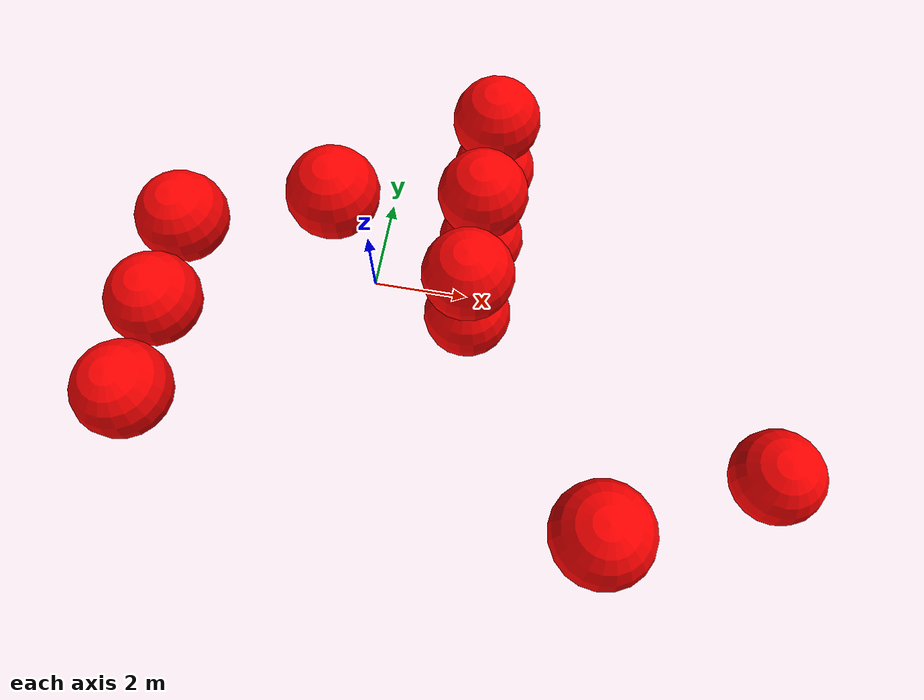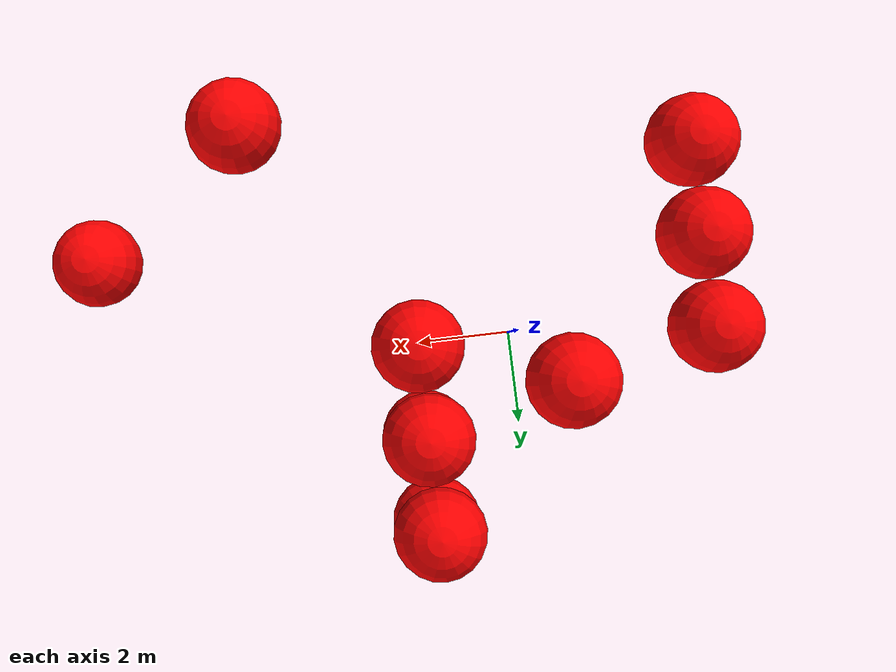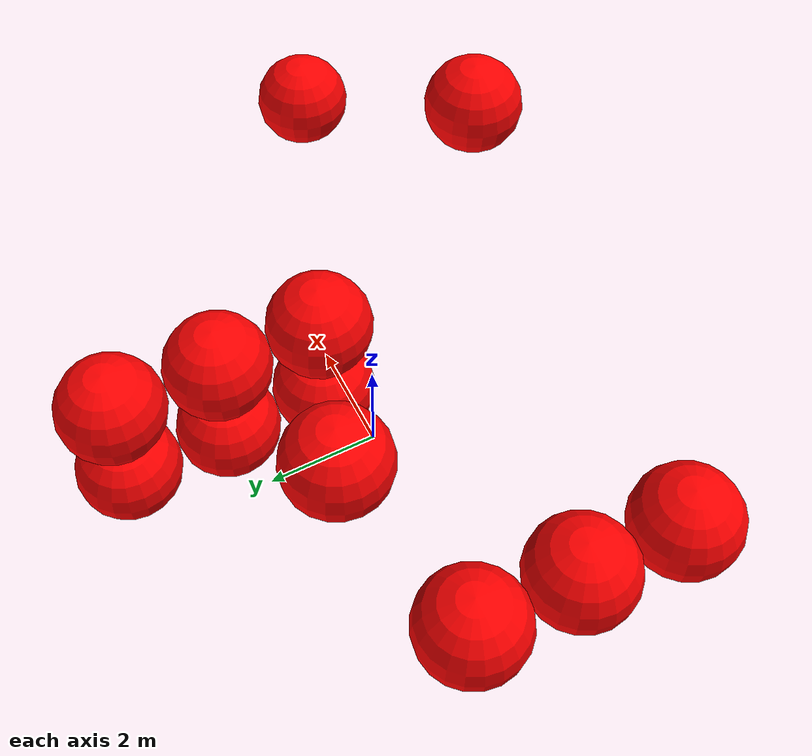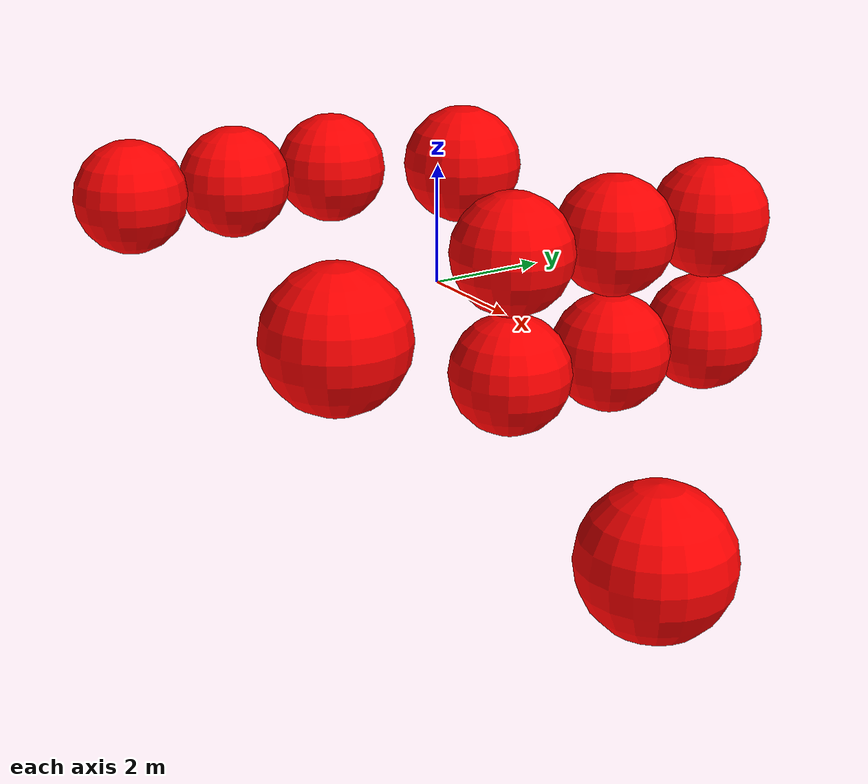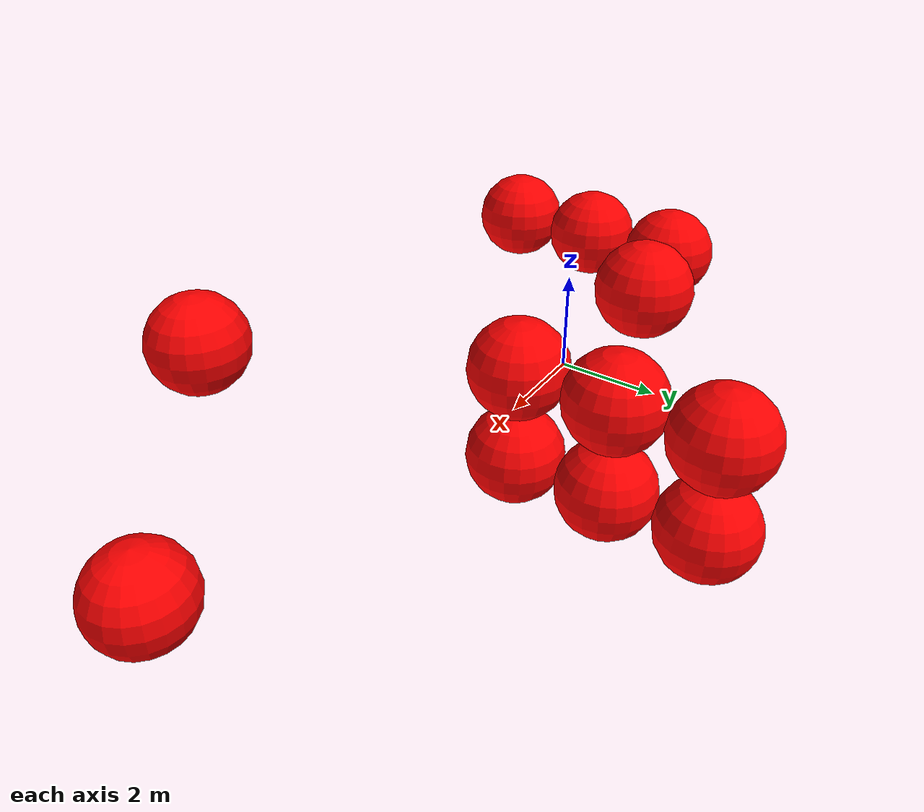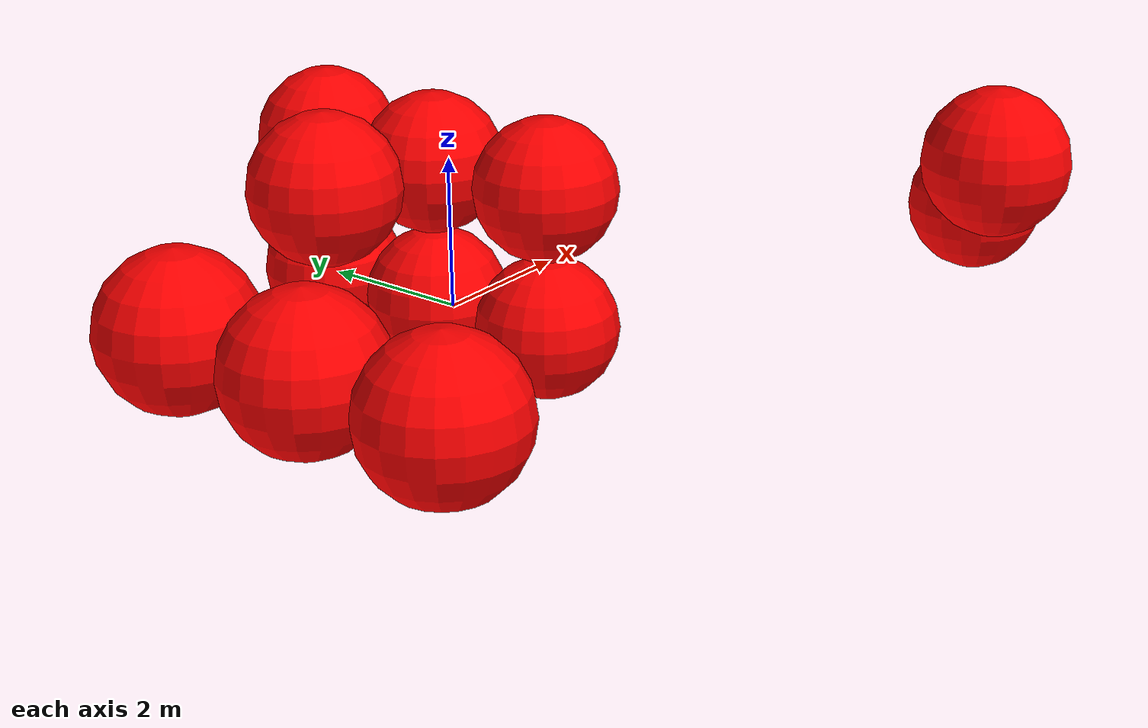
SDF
<sdf version="1.8">
 <world name="3d_world">
  <model name="obstacle_1" canonical_link="obstacle">
   <static>true</static>
   <pose relative_to="world">2.04 0.08 -1.00 0 0 0</pose>
   <link name="obstacle">
    <pose relative_to="__model__">0.0 0 0.0 0 0 0</pose>
    <visual name="visual">
     <geometry><sphere><radius>1.00</radius></sphere></geometry>
     <material>
      <ambient>1.0 0.0 0.0 1</ambient>
      <diffuse>1.0 0.0 0.0 1</diffuse>
      <specular>1.0 0.0 0.0 1</specular>
     </material>
    </visual>
    <collision name="collision"><geometry><sphere><radius>1.00</radius></sphere></geometry></collision>
    <enable_gravity>false</enable_gravity>
   </link>
   <plugin filename="ignition-gazebo-velocity-control-system" name="ignition::gazebo::systems::VelocityControl">
    <initial_linear>0.00 0.00 0.00</initial_linear>
    <initial_angular>0 0 0</initial_angular>
   </plugin>
   <plugin filename="ignition-gazebo-odometry-publisher-system" name="ignition::gazebo::systems::OdometryPublisher">
    <dimensions>3</dimensions>
   </plugin>
  </model>
  <model name="obstacle_2" canonical_link="obstacle">
   <static>true</static>
   <pose relative_to="world">2.04 2.08 -1.00 0 0 0</pose>
   <link name="obstacle">
    <pose relative_to="__model__">0.0 0 0.0 0 0 0</pose>
    <visual name="visual">
     <geometry><sphere><radius>1.00</radius></sphere></geometry>
     <material>
      <ambient>1.0 0.0 0.0 1</ambient>
      <diffuse>1.0 0.0 0.0 1</diffuse>
      <specular>1.0 0.0 0.0 1</specular>
     </material>
    </visual>
    <collision name="collision"><geometry><sphere><radius>1.00</radius></sphere></geometry></collision>
    <enable_gravity>false</enable_gravity>
   </link>
   <plugin filename="ignition-gazebo-velocity-control-system" name="ignition::gazebo::systems::VelocityControl">
    <initial_linear>0.00 0.00 0.00</initial_linear>
    <initial_angular>0 0 0</initial_angular>
   </plugin>
   <plugin filename="ignition-gazebo-odometry-publisher-system" name="ignition::gazebo::systems::OdometryPublisher">
    <dimensions>3</dimensions>
   </plugin>
  </model>
  <model name="obstacle_3" canonical_link="obstacle">
   <static>true</static>
   <pose relative_to="world">2.04 4.08 -1.00 0 0 0</pose>
   <link name="obstacle">
    <pose relative_to="__model__">0.0 0 0.0 0 0 0</pose>
    <visual name="visual">
     <geometry><sphere><radius>1.00</radius></sphere></geometry>
     <material>
      <ambient>1.0 0.0 0.0 1</ambient>
      <diffuse>1.0 0.0 0.0 1</diffuse>
      <specular>1.0 0.0 0.0 1</specular>
     </material>
    </visual>
    <collision name="collision"><geometry><sphere><radius>1.00</radius></sphere></geometry></collision>
    <enable_gravity>false</enable_gravity>
   </link>
   <plugin filename="ignition-gazebo-velocity-control-system" name="ignition::gazebo::systems::VelocityControl">
    <initial_linear>0.00 0.00 0.00</initial_linear>
    <initial_angular>0 0 0</initial_angular>
   </plugin>
   <plugin filename="ignition-gazebo-odometry-publisher-system" name="ignition::gazebo::systems::OdometryPublisher">
    <dimensions>3</dimensions>
   </plugin>
  </model>
  <model name="obstacle_4" canonical_link="obstacle">
   <static>true</static>
   <pose relative_to="world">2.04 0.08 1.00 0 0 0</pose>
   <link name="obstacle">
    <pose relative_to="__model__">0.0 0 0.0 0 0 0</pose>
    <visual name="visual">
     <geometry><sphere><radius>1.00</radius></sphere></geometry>
     <material>
      <ambient>1.0 0.0 0.0 1</ambient>
      <diffuse>1.0 0.0 0.0 1</diffuse>
      <specular>1.0 0.0 0.0 1</specular>
     </material>
    </visual>
    <collision name="collision"><geometry><sphere><radius>1.00</radius></sphere></geometry></collision>
    <enable_gravity>false</enable_gravity>
   </link>
   <plugin filename="ignition-gazebo-velocity-control-system" name="ignition::gazebo::systems::VelocityControl">
    <initial_linear>0.00 0.00 0.00</initial_linear>
    <initial_angular>0 0 0</initial_angular>
   </plugin>
   <plugin filename="ignition-gazebo-odometry-publisher-system" name="ignition::gazebo::systems::OdometryPublisher">
    <dimensions>3</dimensions>
   </plugin>
  </model>
  <model name="obstacle_5" canonical_link="obstacle">
   <static>true</static>
   <pose relative_to="world">2.04 2.08 1.00 0 0 0</pose>
   <link name="obstacle">
    <pose relative_to="__model__">0.0 0 0.0 0 0 0</pose>
    <visual name="visual">
     <geometry><sphere><radius>1.00</radius></sphere></geometry>
     <material>
      <ambient>1.0 0.0 0.0 1</ambient>
      <diffuse>1.0 0.0 0.0 1</diffuse>
      <specular>1.0 0.0 0.0 1</specular>
     </material>
    </visual>
    <collision name="collision"><geometry><sphere><radius>1.00</radius></sphere></geometry></collision>
    <enable_gravity>false</enable_gravity>
   </link>
   <plugin filename="ignition-gazebo-velocity-control-system" name="ignition::gazebo::systems::VelocityControl">
    <initial_linear>0.00 0.00 0.00</initial_linear>
    <initial_angular>0 0 0</initial_angular>
   </plugin>
   <plugin filename="ignition-gazebo-odometry-publisher-system" name="ignition::gazebo::systems::OdometryPublisher">
    <dimensions>3</dimensions>
   </plugin>
  </model>
  <model name="obstacle_6" canonical_link="obstacle">
   <static>true</static>
   <pose relative_to="world">2.04 4.08 1.00 0 0 0</pose>
   <link name="obstacle">
    <pose relative_to="__model__">0.0 0 0.0 0 0 0</pose>
    <visual name="visual">
     <geometry><sphere><radius>1.00</radius></sphere></geometry>
     <material>
      <ambient>1.0 0.0 0.0 1</ambient>
      <diffuse>1.0 0.0 0.0 1</diffuse>
      <specular>1.0 0.0 0.0 1</specular>
     </material>
    </visual>
    <collision name="collision"><geometry><sphere><radius>1.00</radius></sphere></geometry></collision>
    <enable_gravity>false</enable_gravity>
   </link>
   <plugin filename="ignition-gazebo-velocity-control-system" name="ignition::gazebo::systems::VelocityControl">
    <initial_linear>0.00 0.00 0.00</initial_linear>
    <initial_angular>0 0 0</initial_angular>
   </plugin>
   <plugin filename="ignition-gazebo-odometry-publisher-system" name="ignition::gazebo::systems::OdometryPublisher">
    <dimensions>3</dimensions>
   </plugin>
  </model>
  <model name="obstacle_18" canonical_link="obstacle">
   <static>true</static>
   <pose relative_to="world">-4.29 -3.59 1.00 0 0 0</pose>
   <link name="obstacle">
    <pose relative_to="__model__">0.0 0 0.0 0 0 0</pose>
    <visual name="visual">
     <geometry><sphere><radius>1.00</radius></sphere></geometry>
     <material>
      <ambient>1.0 0.0 0.0 1</ambient>
      <diffuse>1.0 0.0 0.0 1</diffuse>
      <specular>1.0 0.0 0.0 1</specular>
     </material>
    </visual>
    <collision name="collision"><geometry><sphere><radius>1.00</radius></sphere></geometry></collision>
    <enable_gravity>false</enable_gravity>
   </link>
   <plugin filename="ignition-gazebo-velocity-control-system" name="ignition::gazebo::systems::VelocityControl">
    <initial_linear>0.00 0.00 0.00</initial_linear>
    <initial_angular>0 0 0</initial_angular>
   </plugin>
   <plugin filename="ignition-gazebo-odometry-publisher-system" name="ignition::gazebo::systems::OdometryPublisher">
    <dimensions>3</dimensions>
   </plugin>
  </model>
  <model name="obstacle_19" canonical_link="obstacle">
   <static>true</static>
   <pose relative_to="world">-4.29 -1.59 1.00 0 0 0</pose>
   <link name="obstacle">
    <pose relative_to="__model__">0.0 0 0.0 0 0 0</pose>
    <visual name="visual">
     <geometry><sphere><radius>1.00</radius></sphere></geometry>
     <material>
      <ambient>1.0 0.0 0.0 1</ambient>
      <diffuse>1.0 0.0 0.0 1</diffuse>
      <specular>1.0 0.0 0.0 1</specular>
     </material>
    </visual>
    <collision name="collision"><geometry><sphere><radius>1.00</radius></sphere></geometry></collision>
    <enable_gravity>false</enable_gravity>
   </link>
   <plugin filename="ignition-gazebo-velocity-control-system" name="ignition::gazebo::systems::VelocityControl">
    <initial_linear>0.00 0.00 0.00</initial_linear>
    <initial_angular>0 0 0</initial_angular>
   </plugin>
   <plugin filename="ignition-gazebo-odometry-publisher-system" name="ignition::gazebo::systems::OdometryPublisher">
    <dimensions>3</dimensions>
   </plugin>
  </model>
  <model name="obstacle_20" canonical_link="obstacle">
   <static>true</static>
   <pose relative_to="world">-4.29 0.41 1.00 0 0 0</pose>
   <link name="obstacle">
    <pose relative_to="__model__">0.0 0 0.0 0 0 0</pose>
    <visual name="visual">
     <geometry><sphere><radius>1.00</radius></sphere></geometry>
     <material>
      <ambient>1.0 0.0 0.0 1</ambient>
      <diffuse>1.0 0.0 0.0 1</diffuse>
      <specular>1.0 0.0 0.0 1</specular>
     </material>
    </visual>
    <collision name="collision"><geometry><sphere><radius>1.00</radius></sphere></geometry></collision>
    <enable_gravity>false</enable_gravity>
   </link>
   <plugin filename="ignition-gazebo-velocity-control-system" name="ignition::gazebo::systems::VelocityControl">
    <initial_linear>0.00 0.00 0.00</initial_linear>
    <initial_angular>0 0 0</initial_angular>
   </plugin>
   <plugin filename="ignition-gazebo-odometry-publisher-system" name="ignition::gazebo::systems::OdometryPublisher">
    <dimensions>3</dimensions>
   </plugin>
  </model>
  <model name="obstacle_21" canonical_link="obstacle">
   <static>false</static>
   <pose relative_to="world">9.03 -2.69 -0.59 0 0 0</pose>
   <link name="obstacle">
    <pose relative_to="__model__">0.0 0 0.0 0 0 0</pose>
    <visual name="visual">
     <geometry><sphere><radius>1.00</radius></sphere></geometry>
     <material>
      <ambient>1.0 0.0 0.0 1</ambient>
      <diffuse>1.0 0.0 0.0 1</diffuse>
      <specular>1.0 0.0 0.0 1</specular>
     </material>
    </visual>
    <collision name="collision"><geometry><sphere><radius>1.00</radius></sphere></geometry></collision>
    <enable_gravity>false</enable_gravity>
   </link>
   <plugin filename="ignition-gazebo-velocity-control-system" name="ignition::gazebo::systems::VelocityControl">
    <initial_linear>0.00 0.75 0.12</initial_linear>
    <initial_angular>0 0 0</initial_angular>
   </plugin>
   <plugin filename="ignition-gazebo-odometry-publisher-system" name="ignition::gazebo::systems::OdometryPublisher">
    <dimensions>3</dimensions>
   </plugin>
  </model>
  <model name="obstacle_22" canonical_link="obstacle">
   <static>false</static>
   <pose relative_to="world">5.31 -4.92 1.51 0 0 0</pose>
   <link name="obstacle">
    <pose relative_to="__model__">0.0 0 0.0 0 0 0</pose>
    <visual name="visual">
     <geometry><sphere><radius>1.00</radius></sphere></geometry>
     <material>
      <ambient>1.0 0.0 0.0 1</ambient>
      <diffuse>1.0 0.0 0.0 1</diffuse>
      <specular>1.0 0.0 0.0 1</specular>
     </material>
    </visual>
    <collision name="collision"><geometry><sphere><radius>1.00</radius></sphere></geometry></collision>
    <enable_gravity>false</enable_gravity>
   </link>
   <plugin filename="ignition-gazebo-velocity-control-system" name="ignition::gazebo::systems::VelocityControl">
    <initial_linear>0.00 1.02 -0.36</initial_linear>
    <initial_angular>0 0 0</initial_angular>
   </plugin>
   <plugin filename="ignition-gazebo-odometry-publisher-system" name="ignition::gazebo::systems::OdometryPublisher">
    <dimensions>3</dimensions>
   </plugin>
  </model>
  <model name="obstacle_23" canonical_link="obstacle">
   <static>false</static>
   <pose relative_to="world">-1.04 1.17 1.65 0 0 0</pose>
   <link name="obstacle">
    <pose relative_to="__model__">0.0 0 0.0 0 0 0</pose>
    <visual name="visual">
     <geometry><sphere><radius>1.00</radius></sphere></geometry>
     <material>
      <ambient>1.0 0.0 0.0 1</ambient>
      <diffuse>1.0 0.0 0.0 1</diffuse>
      <specular>1.0 0.0 0.0 1</specular>
     </material>
    </visual>
    <collision name="collision"><geometry><sphere><radius>1.00</radius></sphere></geometry></collision>
    <enable_gravity>false</enable_gravity>
   </link>
   <plugin filename="ignition-gazebo-velocity-control-system" name="ignition::gazebo::systems::VelocityControl">
    <initial_linear>0.00 -1.05 -1.49</initial_linear>
    <initial_angular>0 0 0</initial_angular>
   </plugin>
   <plugin filename="ignition-gazebo-odometry-publisher-system" name="ignition::gazebo::systems::OdometryPublisher">
    <dimensions>3</dimensions>
   </plugin>
  </model>
 </world>
</sdf>
